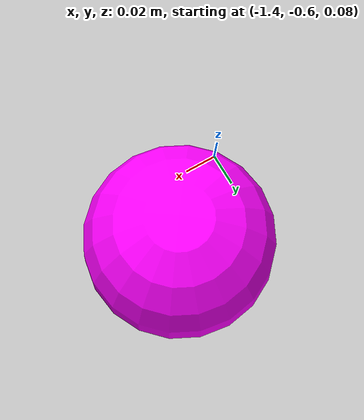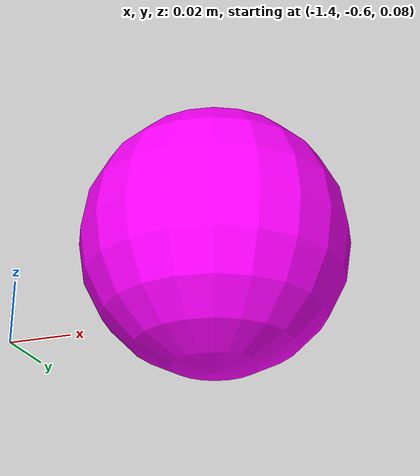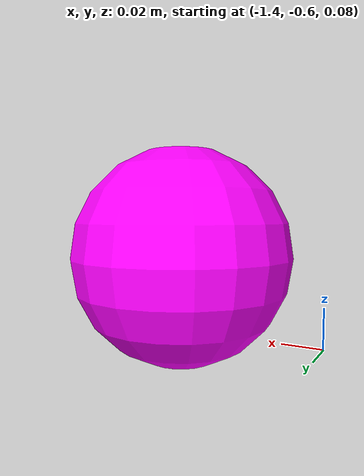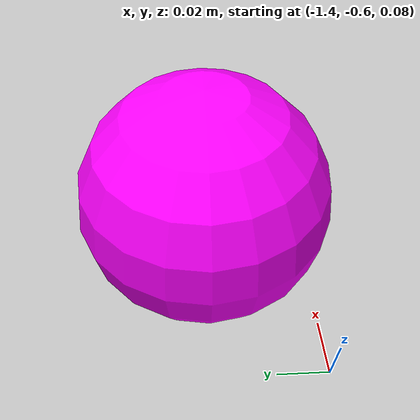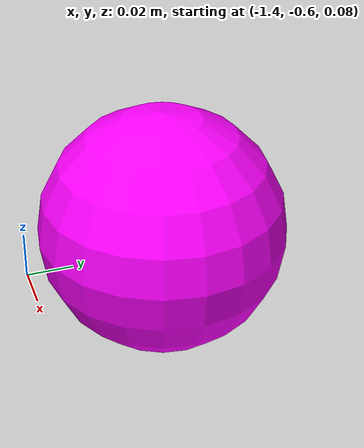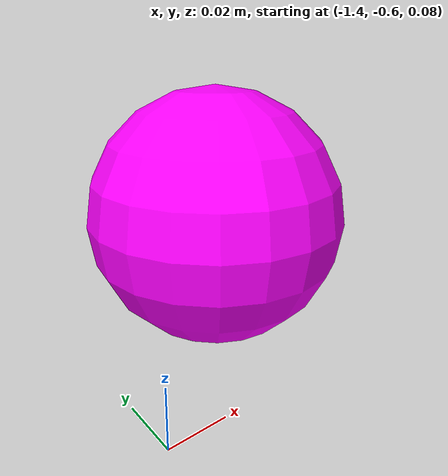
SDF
<?xml version='1.0'?>
<sdf version='1.7'>
  <model name='Ball_3'>
    <link name='link_1_clone_clone'>
      <inertial>
        <mass>0.00080783</mass>
        <inertia>
          <ixx>7e-07</ixx>
          <ixy>0</ixy>
          <ixz>0</ixz>
          <iyy>7e-07</iyy>
          <iyz>0</iyz>
          <izz>7e-07</izz>
        </inertia>
        <pose>0 0 0 0 -0 0</pose>
      </inertial>
      <pose>-1.34939 -0.55566 0.125 0 -0 0</pose>
      <self_collide>0</self_collide>
      <enable_wind>0</enable_wind>
      <kinematic>0</kinematic>
      <gravity>1</gravity>
      <visual name='visual'>
        <pose>0 0 0 0 -0 0</pose>
        <geometry>
          <sphere>
            <radius>0.0465731</radius>
          </sphere>
        </geometry>
        <material>
          <lighting>1</lighting>
          <script>
            <uri>file://media/materials/scripts/gazebo.material</uri>
            <name>Gazebo/Grey</name>
          </script>
          <shader type='pixel'>
            <normal_map>__default__</normal_map>
          </shader>
          <ambient>1 0 1 0</ambient>
          <diffuse>0.7 0.7 0.7 1</diffuse>
          <specular>0.01 0.01 0.01 1</specular>
          <emissive>0 0 0 1</emissive>
        </material>
        <transparency>0</transparency>
        <cast_shadows>1</cast_shadows>
      </visual>
      <collision name='collision'>
        <laser_retro>0</laser_retro>
        <max_contacts>10</max_contacts>
        <pose>0 0 0 0 -0 0</pose>
        <geometry>
          <sphere>
            <radius>0.046573</radius>
          </sphere>
        </geometry>
        <surface>
          <friction>
            <ode>
              <mu>1</mu>
              <mu2>1</mu2>
              <fdir1>0 0 0</fdir1>
              <slip1>0</slip1>
              <slip2>0</slip2>
            </ode>
            <torsional>
              <coefficient>1</coefficient>
              <patch_radius>0</patch_radius>
              <surface_radius>0</surface_radius>
              <use_patch_radius>1</use_patch_radius>
              <ode>
                <slip>0</slip>
              </ode>
            </torsional>
          </friction>
          <bounce>
            <restitution_coefficient>0</restitution_coefficient>
            <threshold>1e+06</threshold>
          </bounce>
          <contact>
            <collide_without_contact>0</collide_without_contact>
            <collide_without_contact_bitmask>1</collide_without_contact_bitmask>
            <collide_bitmask>1</collide_bitmask>
            <ode>
              <soft_cfm>0</soft_cfm>
              <soft_erp>0.2</soft_erp>
              <kp>1e+13</kp>
              <kd>1</kd>
              <max_vel>0.01</max_vel>
              <min_depth>0</min_depth>
            </ode>
            <bullet>
              <split_impulse>1</split_impulse>
              <split_impulse_penetration_threshold>-0.01</split_impulse_penetration_threshold>
              <soft_cfm>0</soft_cfm>
              <soft_erp>0.2</soft_erp>
              <kp>1e+13</kp>
              <kd>1</kd>
            </bullet>
          </contact>
        </surface>
      </collision>
    </link>
    <static>0</static>
    <allow_auto_disable>1</allow_auto_disable>
  </model>
</sdf>
